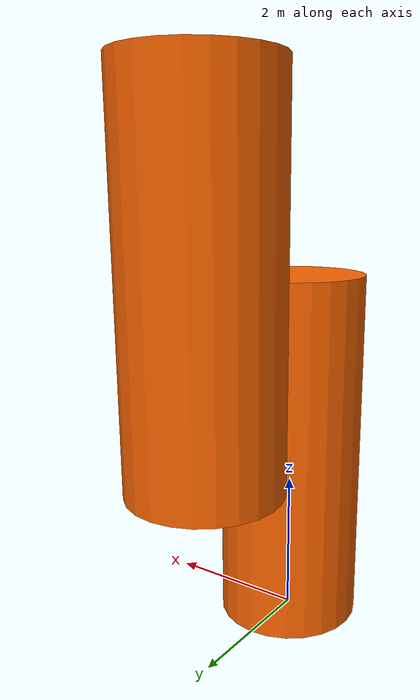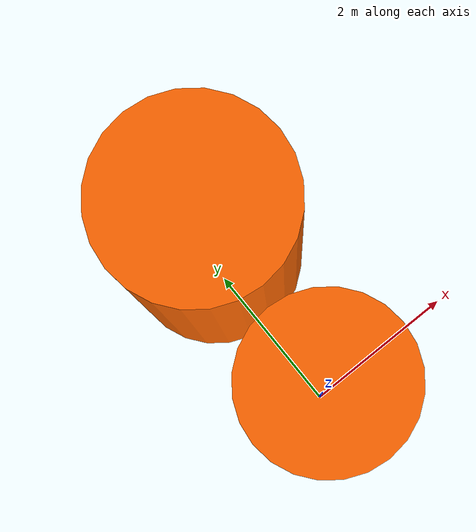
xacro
<?xml version="1.0"?>
<robot name="llwrobot" xmlns:xacro="http://www.ros.org/wiki/xacro">
    <xacro:property name="height" value="5"/>
    <xacro:property name="radius" value="1"/>

    <gazebo>
        <plugin name="gazebo_ros_control" filename="libgazebo_ros_control.so">
            <robotNamespace>/llwrobot</robotNamespace>
            <robotSimType>gazebo_ros_control/DefaultRobotHWSim</robotSimType>
        </plugin>
    </gazebo>
    <gazebo reference="link1">
      <material>Gazebo/Orange</material>
    </gazebo>
    <gazebo reference="link2">
      <material>Gazebo/Red</material>
    </gazebo>

    <link name="world"/>

    <joint name="fixed" type="fixed">
        <origin xyz="0 0 ${height/2}" rpy="0.0 0.0 0.0"/>
        <parent link="world"/>
        <child link="link1"/>
        <dynamics damping="0.4"/>
    </joint>

    <link name="link1">
        <visual>
            <origin xyz="0.0 0.0 0.0" rpy="0.0 0.0 0.0"/>
            <geometry>
                <cylinder radius="${radius}" length="${height}"/>
            </geometry>
            <material name="yellow">
                <color rgba="1 0.4 0 1"/>
            </material>
        </visual>

        <collision>
             <origin xyz="0.0 0.0 0.0" rpy="0.0 0.0 0.0"/>
            <geometry>
                <cylinder radius="${radius}" length="${height}"/>
            </geometry>
        </collision>

        <inertial>
            <mass value="2"/>
            <origin xyz="0.0 0.0 0.0" rpy="0.0 0.0 0.0"/>
            <inertia ixx="0.1" ixy="0.0" ixz="0.0" iyy="0.05" iyz="0.0" izz="0.0"/>
        </inertial>
    </link>

    <joint name="joint1" type="continuous">
        <origin xyz="0 ${radius*2} ${height/2}" rpy="0.0 0.0 0.0"/>
        <parent link="link1"/>
        <child link="link2"/>
        <axis xyz="0 1 0.0"/>
    </joint>

    <link name="link2">
        <visual>
            <origin xyz="0.0 0.0 0.0" rpy="0.0 0.0 0.0"/>
            <geometry>
                <cylinder radius="${radius}" length="${height}"/>
            </geometry>
            <material name="yellow">
                <color rgba="1 0.4 0 1"/>
            </material>
        </visual>

        <collision>
             <origin xyz="0.0 0.0 0.0" rpy="0.0 0.0 0.0"/>
            <geometry>
                <cylinder radius="${radius}" length="${height}"/>
            </geometry>
        </collision>

        <inertial>
            <mass value="2"/>
            <origin xyz="0.0 0.0 0.0" rpy="0.0 0.0 0.0"/>
            <inertia ixx="0.1" ixy="0.0" ixz="0.0" iyy="0.05" iyz="0.0" izz="0.0"/>
        </inertial>
    </link>

    <transmission name="tran1">
        <type>transmission_interface/SimpleTransmission</type>
        <joint name="joint1">
            <hardwareInterface>hardware_interface/EffortJointInterface</hardwareInterface>
        </joint>
        <actuator name="motor1">
            <hardwareInterface>hardware_interface/EffortJointInterface</hardwareInterface>
        <mechanicalReduction>1</mechanicalReduction>
        </actuator>
    </transmission>
</robot>
